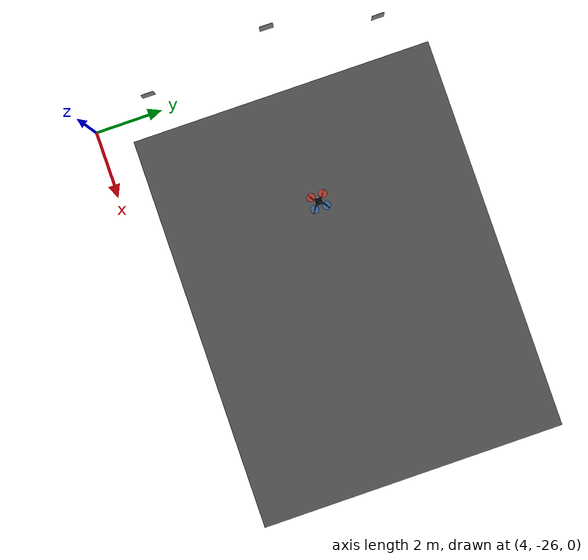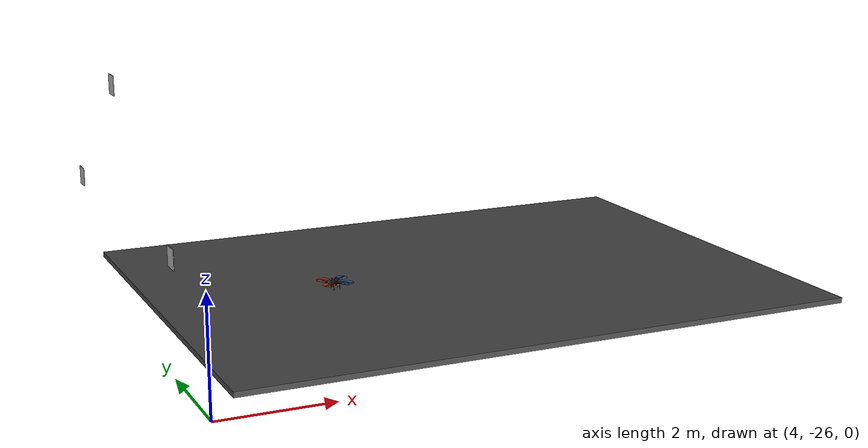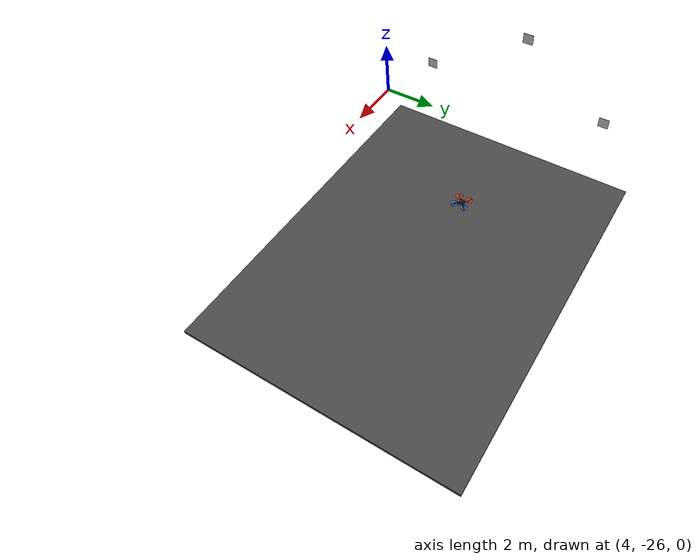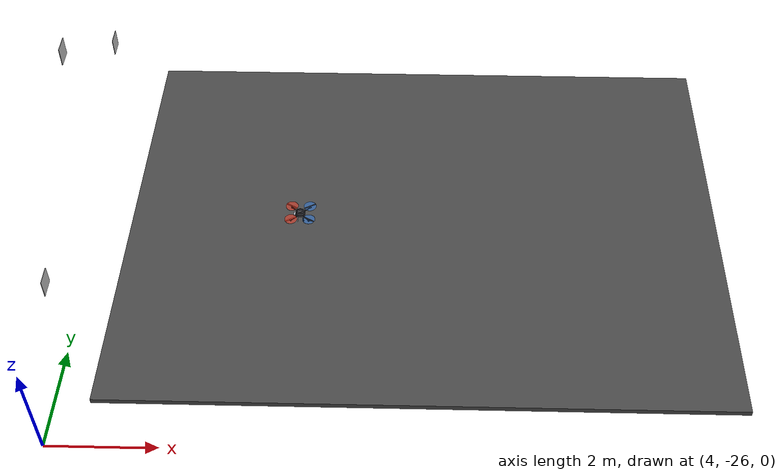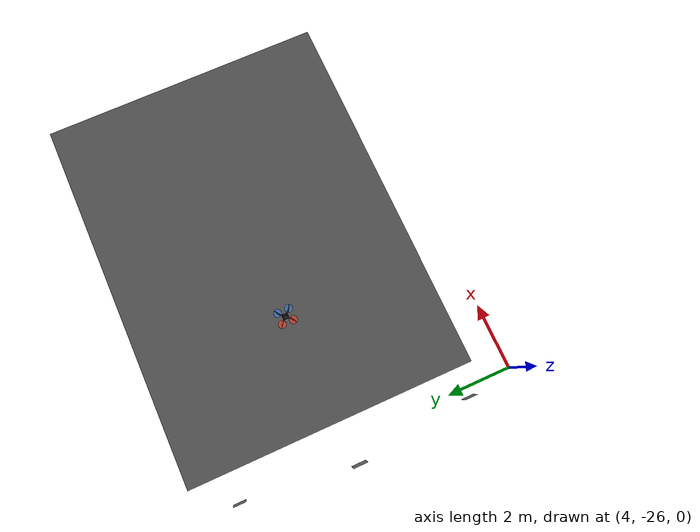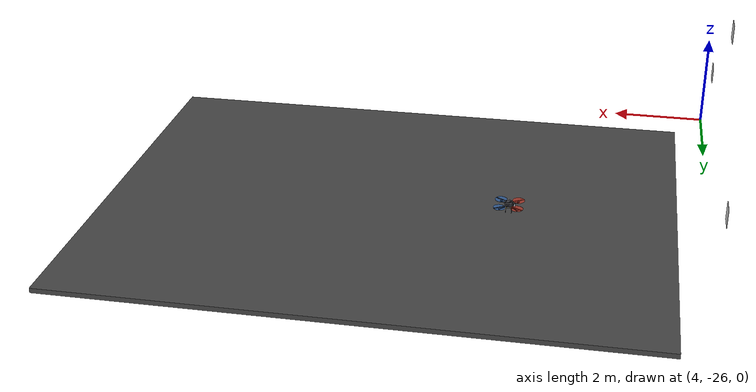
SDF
<sdf version="1.6">
 <world name="default">
  <plugin filename="gz-sim-physics-system" name="gz::sim::systems::Physics"/>
  <plugin filename="gz-sim-sensors-system" name="gz::sim::systems::Sensors">
   <render_engine>ogre2</render_engine>
  </plugin>
  <plugin filename="gz-sim-user-commands-system" name="gz::sim::systems::UserCommands"/>
  <plugin filename="gz-sim-scene-broadcaster-system" name="gz::sim::systems::SceneBroadcaster"/>
  <light type="directional" name="sun_entrance">
   <pose>18.0 -20.57 14.0 0 0.52 3.14159</pose>
   <diffuse>1.0 0.98 0.92 1.0</diffuse>
   <specular>0.4 0.4 0.4 1.0</specular>
   <direction>-0.80 0.0 -0.45</direction>
   <cast_shadows>false</cast_shadows>
  </light>
  <light type="point" name="entrance_light">
   <pose>5.0 -20.57 4.0 0 0 0</pose>
   <diffuse>0.95 0.92 0.85 1</diffuse>
   <specular>0.3 0.3 0.3 1</specular>
   <attenuation>
    <range>35</range>
    <constant>0.20</constant>
    <linear>0.04</linear>
    <quadratic>0.005</quadratic>
   </attenuation>
   <cast_shadows>false</cast_shadows>
  </light>
  <light type="point" name="tunnel_corridor_light">
   <pose>-5.0 -10.0 3.8 0 0 0</pose>
   <diffuse>0.90 0.88 0.82 1</diffuse>
   <specular>0.2 0.2 0.2 1</specular>
   <attenuation>
    <range>35</range>
    <constant>0.20</constant>
    <linear>0.04</linear>
    <quadratic>0.005</quadratic>
   </attenuation>
   <cast_shadows>false</cast_shadows>
  </light>
  <light type="point" name="gallery_junction_light">
   <pose>-17.0 2.0 4.0 0 0 0</pose>
   <diffuse>0.92 0.90 0.85 1</diffuse>
   <specular>0.2 0.2 0.2 1</specular>
   <attenuation>
    <range>45</range>
    <constant>0.20</constant>
    <linear>0.04</linear>
    <quadratic>0.005</quadratic>
   </attenuation>
   <cast_shadows>false</cast_shadows>
  </light>
  <light type="point" name="cavern_center_light">
   <pose>-44.5 35.7 12.0 0 0 0</pose>
   <diffuse>0.95 0.92 0.85 1</diffuse>
   <specular>0.2 0.2 0.2 1</specular>
   <attenuation>
    <range>60</range>
    <constant>0.15</constant>
    <linear>0.03</linear>
    <quadratic>0.003</quadratic>
   </attenuation>
   <cast_shadows>false</cast_shadows>
  </light>
  <light type="point" name="deep_cavern_light">
   <pose>-50.0 -20.0 5.0 0 0 0</pose>
   <diffuse>0.88 0.90 0.95 1</diffuse>
   <specular>0.2 0.2 0.2 1</specular>
   <attenuation>
    <range>45</range>
    <constant>0.20</constant>
    <linear>0.04</linear>
    <quadratic>0.005</quadratic>
   </attenuation>
   <cast_shadows>false</cast_shadows>
  </light>
  <gravity>0 0 -9.8</gravity>
  <magnetic_field>6e-06 2.3e-05 -4.2e-05</magnetic_field>
  <atmosphere type="adiabatic"/>
  <physics name="default_physics" default="0" type="ode">
   <max_step_size>0.004</max_step_size>
   <real_time_factor>1.0</real_time_factor>
   <real_time_update_rate>250</real_time_update_rate>
  </physics>
  <scene>
   <ambient>0.52 0.52 0.55 1.0</ambient>
   <background>0.15 0.18 0.22 1.0</background>
   <shadows>0</shadows>
  </scene>
  <audio><device>default</device></audio>
  <spherical_coordinates>
   <surface_model>EARTH_WGS84</surface_model>
   <latitude_deg>0</latitude_deg>
   <longitude_deg>0</longitude_deg>
   <elevation>0</elevation>
   <heading_deg>0</heading_deg>
  </spherical_coordinates>
  <model name="Apriltag36_11_00014">
   <link name="main">
    <visual name="main_Visual">
     <geometry><box><size>0.348 0.348 0.01</size></box></geometry>
     <material>
      <script>
       <uri>model://Apriltag36_11_00014/materials/scripts</uri>
       <uri>model://Apriltag36_11_00014/materials/textures</uri>
       <name>Apriltag36_11_00014</name>
      </script>
     </material>
    </visual>
   </link>
   <static>1</static>
   <pose>4.01 -24 1.99921 0 1.57 0</pose>
  </model>
  <model name="Apriltag36_11_00015">
   <link name="main">
    <visual name="main_Visual">
     <geometry><box><size>0.348 0.348 0.01</size></box></geometry>
     <material>
      <script>
       <uri>model://Apriltag36_11_00015/materials/scripts</uri>
       <uri>model://Apriltag36_11_00015/materials/textures</uri>
       <name>Apriltag36_11_00015</name>
      </script>
     </material>
    </visual>
   </link>
   <static>1</static>
   <pose>4.01 -17.5 2 0 1.57 0</pose>
  </model>
  <model name="Apriltag36_11_00016">
   <link name="main">
    <visual name="main_Visual">
     <geometry><box><size>0.348 0.348 0.01</size></box></geometry>
     <material>
      <script>
       <uri>model://Apriltag36_11_00016/materials/scripts</uri>
       <uri>model://Apriltag36_11_00016/materials/textures</uri>
       <name>Apriltag36_11_00016</name>
      </script>
     </material>
    </visual>
   </link>
   <static>1</static>
   <pose>4.01 -20.5 4.20131 0 1.57 0</pose>
  </model>
  <model name="asphalt_plane">
   <static>1</static>
   <link name="link">
    <collision name="collision"><geometry><box><size>9 11.6978 0.1</size></box></geometry></collision>
    <visual name="visual">
     <cast_shadows>0</cast_shadows>
     <geometry><box><size>9 11.6978 0.1</size></box></geometry>
     <material>
      <script>
       <uri>model://asphalt_plane/materials/scripts</uri>
       <uri>model://asphalt_plane/materials/textures</uri>
       <name>vrc/asphalt</name>
      </script>
     </material>
    </visual>
   </link>
   <pose>10.469 -20.5581 0 0 0 -1.5708</pose>
  </model>
  <model name="cave_drone">
   <pose>8.0 -20.57 0.17 0 0 3.14159</pose>
   <static>false</static>
   <link name="base_link">
    <gravity>false</gravity>
    <inertial><mass>1.8</mass><inertia><ixx>0.045</ixx><iyy>0.045</iyy><izz>0.075</izz></inertia></inertial>
    <visual name="chassis_bottom">
     <geometry><box><size>0.18 0.18 0.003</size></box></geometry>
     <material>
      <ambient>0.08 0.08 0.09 1</ambient>
      <diffuse>0.12 0.12 0.14 1</diffuse>
      <specular>0.6 0.6 0.6 1</specular>
     </material>
    </visual>
    <visual name="chassis_mid">
     <geometry><box><size>0.16 0.16 0.003</size></box></geometry>
     <pose>0 0 0.04 0 0 0</pose>
     <material>
      <ambient>0.08 0.08 0.09 1</ambient>
      <diffuse>0.12 0.12 0.14 1</diffuse>
      <specular>0.6 0.6 0.6 1</specular>
     </material>
    </visual>
    <visual name="chassis_top">
     <geometry><box><size>0.13 0.13 0.003</size></box></geometry>
     <pose>0 0 0.08 0 0 0</pose>
     <material>
      <ambient>0.08 0.08 0.09 1</ambient>
      <diffuse>0.12 0.12 0.14 1</diffuse>
      <specular>0.6 0.6 0.6 1</specular>
     </material>
    </visual>
    <visual name="standoff_fl">
     <geometry><cylinder><radius>0.003</radius><length>0.08</length></cylinder></geometry>
     <pose>0.06 0.06 0.04 0 0 0</pose>
     <material><ambient>0.7 0.7 0.75 1</ambient><diffuse>0.85 0.85 0.9 1</diffuse></material>
    </visual>
    <visual name="standoff_fr">
     <geometry><cylinder><radius>0.003</radius><length>0.08</length></cylinder></geometry>
     <pose>0.06 -0.06 0.04 0 0 0</pose>
     <material><ambient>0.7 0.7 0.75 1</ambient><diffuse>0.85 0.85 0.9 1</diffuse></material>
    </visual>
    <visual name="standoff_rl">
     <geometry><cylinder><radius>0.003</radius><length>0.08</length></cylinder></geometry>
     <pose>-0.06 0.06 0.04 0 0 0</pose>
     <material><ambient>0.7 0.7 0.75 1</ambient><diffuse>0.85 0.85 0.9 1</diffuse></material>
    </visual>
    <visual name="standoff_rr">
     <geometry><cylinder><radius>0.003</radius><length>0.08</length></cylinder></geometry>
     <pose>-0.06 -0.06 0.04 0 0 0</pose>
     <material><ambient>0.7 0.7 0.75 1</ambient><diffuse>0.85 0.85 0.9 1</diffuse></material>
    </visual>
    <visual name="pixhawk_body">
     <geometry><box><size>0.082 0.046 0.020</size></box></geometry>
     <pose>0 0 0.052 0 0 0</pose>
     <material>
      <ambient>0.05 0.05 0.06 1</ambient>
      <diffuse>0.10 0.10 0.12 1</diffuse>
      <specular>0.9 0.9 0.95 1</specular>
     </material>
    </visual>
    <visual name="pixhawk_logo">
     <geometry><box><size>0.035 0.016 0.002</size></box></geometry>
     <pose>0.015 0 0.063 0 0 0</pose>
     <material><ambient>0.9 0.9 0.9 1</ambient><diffuse>1 1 1 1</diffuse></material>
    </visual>
    <visual name="pixhawk_led">
     <geometry><box><size>0.008 0.008 0.002</size></box></geometry>
     <pose>-0.025 0 0.063 0 0 0</pose>
     <material><ambient>0 1 0.8 1</ambient><diffuse>0 1 0.8 1</diffuse><emissive>0 1 0.8 1</emissive></material>
    </visual>
    <visual name="realsense_body">
     <geometry><box><size>0.025 0.090 0.025</size></box></geometry>
     <pose>0.115 0 0.008 0 0.15 0</pose>
     <material>
      <ambient>0.75 0.75 0.80 1</ambient>
      <diffuse>0.85 0.85 0.90 1</diffuse>
      <specular>1 1 1 1</specular>
     </material>
    </visual>
    <visual name="realsense_glass">
     <geometry><box><size>0.003 0.086 0.020</size></box></geometry>
     <pose>0.128 0 0.006 0 0.15 0</pose>
     <material>
      <ambient>0.02 0.05 0.15 1</ambient>
      <diffuse>0.05 0.10 0.25 1</diffuse>
      <specular>1 1 1 1</specular>
     </material>
    </visual>
    <visual name="realsense_ir1">
     <geometry><cylinder><radius>0.004</radius><length>0.005</length></cylinder></geometry>
     <pose>0.129 0.032 0.006 0 1.72 0</pose>
     <material><ambient>0.1 0.3 0.7 1</ambient><diffuse>0.2 0.5 1 1</diffuse></material>
    </visual>
    <visual name="realsense_rgb">
     <geometry><cylinder><radius>0.004</radius><length>0.005</length></cylinder></geometry>
     <pose>0.129 0.000 0.006 0 1.72 0</pose>
     <material><ambient>0.1 0.6 0.2 1</ambient><diffuse>0.2 0.9 0.3 1</diffuse></material>
    </visual>
    <visual name="realsense_ir2">
     <geometry><cylinder><radius>0.004</radius><length>0.005</length></cylinder></geometry>
     <pose>0.129 -0.032 0.006 0 1.72 0</pose>
     <material><ambient>0.1 0.3 0.7 1</ambient><diffuse>0.2 0.5 1 1</diffuse></material>
    </visual>
    <visual name="rplidar_base">
     <geometry><cylinder><radius>0.038</radius><length>0.024</length></cylinder></geometry>
     <pose>0 0 0.095 0 0 0</pose>
     <material><ambient>0.06 0.06 0.07 1</ambient><diffuse>0.12 0.12 0.14 1</diffuse></material>
    </visual>
    <visual name="rplidar_puck">
     <geometry><cylinder><radius>0.034</radius><length>0.020</length></cylinder></geometry>
     <pose>0 0 0.116 0 0 0</pose>
     <material>
      <ambient>0.04 0.04 0.05 1</ambient>
      <diffuse>0.08 0.08 0.10 1</diffuse>
      <specular>0.8 0.8 0.8 1</specular>
     </material>
    </visual>
    <visual name="rplidar_slit">
     <geometry><box><size>0.008 0.066 0.004</size></box></geometry>
     <pose>0 0 0.116 0 0 0</pose>
     <material><ambient>1 0 0 1</ambient><diffuse>1 0.1 0.1 1</diffuse><emissive>0.8 0 0 1</emissive></material>
    </visual>
    <visual name="lipo_battery">
     <geometry><box><size>0.138 0.050 0.038</size></box></geometry>
     <pose>-0.01 0 -0.025 0 0 0</pose>
     <material><ambient>0.06 0.06 0.07 1</ambient><diffuse>0.12 0.12 0.15 1</diffuse></material>
    </visual>
    <visual name="lipo_strap_1">
     <geometry><box><size>0.024 0.054 0.042</size></box></geometry>
     <pose>0.028 0 -0.025 0 0 0</pose>
     <material><ambient>0.95 0.80 0.05 1</ambient><diffuse>1.0 0.85 0.1 1</diffuse></material>
    </visual>
    <visual name="lipo_strap_2">
     <geometry><box><size>0.024 0.054 0.042</size></box></geometry>
     <pose>-0.048 0 -0.025 0 0 0</pose>
     <material><ambient>0.95 0.80 0.05 1</ambient><diffuse>1.0 0.85 0.1 1</diffuse></material>
    </visual>
    <visual name="arm_fl">
     <geometry><cylinder><radius>0.008</radius><length>0.24</length></cylinder></geometry>
     <pose>0.09 0.09 0.0 0 1.5708 0.785</pose>
     <material><ambient>0.07 0.07 0.08 1</ambient><diffuse>0.12 0.12 0.14 1</diffuse></material>
    </visual>
    <visual name="arm_fr">
     <geometry><cylinder><radius>0.008</radius><length>0.24</length></cylinder></geometry>
     <pose>0.09 -0.09 0.0 0 1.5708 -0.785</pose>
     <material><ambient>0.07 0.07 0.08 1</ambient><diffuse>0.12 0.12 0.14 1</diffuse></material>
    </visual>
    <visual name="arm_rl">
     <geometry><cylinder><radius>0.008</radius><length>0.24</length></cylinder></geometry>
     <pose>-0.09 0.09 0.0 0 1.5708 -0.785</pose>
     <material><ambient>0.07 0.07 0.08 1</ambient><diffuse>0.12 0.12 0.14 1</diffuse></material>
    </visual>
    <visual name="arm_rr">
     <geometry><cylinder><radius>0.008</radius><length>0.24</length></cylinder></geometry>
     <pose>-0.09 -0.09 0.0 0 1.5708 0.785</pose>
     <material><ambient>0.07 0.07 0.08 1</ambient><diffuse>0.12 0.12 0.14 1</diffuse></material>
    </visual>
    <visual name="mount_fl">
     <geometry><box><size>0.036 0.034 0.016</size></box></geometry>
     <pose>0.18 0.18 0.004 0 0 0.785</pose>
     <material><ambient>0.1 0.1 0.1 1</ambient></material>
    </visual>
    <visual name="mount_fr">
     <geometry><box><size>0.036 0.034 0.016</size></box></geometry>
     <pose>0.18 -0.18 0.004 0 0 -0.785</pose>
     <material><ambient>0.1 0.1 0.1 1</ambient></material>
    </visual>
    <visual name="mount_rl">
     <geometry><box><size>0.036 0.034 0.016</size></box></geometry>
     <pose>-0.18 0.18 0.004 0 0 -0.785</pose>
     <material><ambient>0.1 0.1 0.1 1</ambient></material>
    </visual>
    <visual name="mount_rr">
     <geometry><box><size>0.036 0.034 0.016</size></box></geometry>
     <pose>-0.18 -0.18 0.004 0 0 0.785</pose>
     <material><ambient>0.1 0.1 0.1 1</ambient></material>
    </visual>
    <visual name="motor_fl">
     <geometry><cylinder><radius>0.015</radius><length>0.026</length></cylinder></geometry>
     <pose>0.18 0.18 0.022 0 0 0</pose>
     <material>
      <ambient>0.3 0.3 0.35 1</ambient>
      <diffuse>0.5 0.5 0.55 1</diffuse>
      <specular>1 1 1 1</specular>
     </material>
    </visual>
    <visual name="motor_fr">
     <geometry><cylinder><radius>0.015</radius><length>0.026</length></cylinder></geometry>
     <pose>0.18 -0.18 0.022 0 0 0</pose>
     <material>
      <ambient>0.3 0.3 0.35 1</ambient>
      <diffuse>0.5 0.5 0.55 1</diffuse>
      <specular>1 1 1 1</specular>
     </material>
    </visual>
    <visual name="motor_rl">
     <geometry><cylinder><radius>0.015</radius><length>0.026</length></cylinder></geometry>
     <pose>-0.18 0.18 0.022 0 0 0</pose>
     <material>
      <ambient>0.3 0.3 0.35 1</ambient>
      <diffuse>0.5 0.5 0.55 1</diffuse>
      <specular>1 1 1 1</specular>
     </material>
    </visual>
    <visual name="motor_rr">
     <geometry><cylinder><radius>0.015</radius><length>0.026</length></cylinder></geometry>
     <pose>-0.18 -0.18 0.022 0 0 0</pose>
     <material>
      <ambient>0.3 0.3 0.35 1</ambient>
      <diffuse>0.5 0.5 0.55 1</diffuse>
      <specular>1 1 1 1</specular>
     </material>
    </visual>
    <visual name="prop_disc_fl">
     <geometry><cylinder><radius>0.125</radius><length>0.003</length></cylinder></geometry>
     <pose>0.18 0.18 0.038 0 0 0</pose>
     <material>
      <ambient>0.8 0.2 0.1 0.45</ambient>
      <diffuse>1.0 0.25 0.15 0.55</diffuse>
      <specular>0.6 0.6 0.6 0.8</specular>
     </material>
    </visual>
    <visual name="prop_blade_fl">
     <geometry><box><size>0.24 0.022 0.004</size></box></geometry>
     <pose>0.18 0.18 0.039 0 0 0.52</pose>
     <material><ambient>0.9 0.2 0.1 0.9</ambient><diffuse>1.0 0.25 0.15 0.95</diffuse></material>
    </visual>
    <visual name="prop_disc_fr">
     <geometry><cylinder><radius>0.125</radius><length>0.003</length></cylinder></geometry>
     <pose>0.18 -0.18 0.038 0 0 0</pose>
     <material>
      <ambient>0.8 0.2 0.1 0.45</ambient>
      <diffuse>1.0 0.25 0.15 0.55</diffuse>
      <specular>0.6 0.6 0.6 0.8</specular>
     </material>
    </visual>
    <visual name="prop_blade_fr">
     <geometry><box><size>0.24 0.022 0.004</size></box></geometry>
     <pose>0.18 -0.18 0.039 0 0 -0.52</pose>
     <material><ambient>0.9 0.2 0.1 0.9</ambient><diffuse>1.0 0.25 0.15 0.95</diffuse></material>
    </visual>
    <visual name="prop_disc_rl">
     <geometry><cylinder><radius>0.125</radius><length>0.003</length></cylinder></geometry>
     <pose>-0.18 0.18 0.038 0 0 0</pose>
     <material>
      <ambient>0.15 0.35 0.7 0.45</ambient>
      <diffuse>0.2 0.5 0.9 0.55</diffuse>
      <specular>0.6 0.6 0.6 0.8</specular>
     </material>
    </visual>
    <visual name="prop_blade_rl">
     <geometry><box><size>0.24 0.022 0.004</size></box></geometry>
     <pose>-0.18 0.18 0.039 0 0 -0.52</pose>
     <material><ambient>0.1 0.1 0.12 0.9</ambient><diffuse>0.18 0.18 0.2 0.95</diffuse></material>
    </visual>
    <visual name="prop_disc_rr">
     <geometry><cylinder><radius>0.125</radius><length>0.003</length></cylinder></geometry>
     <pose>-0.18 -0.18 0.038 0 0 0</pose>
     <material>
      <ambient>0.15 0.35 0.7 0.45</ambient>
      <diffuse>0.2 0.5 0.9 0.55</diffuse>
      <specular>0.6 0.6 0.6 0.8</specular>
     </material>
    </visual>
    <visual name="prop_blade_rr">
     <geometry><box><size>0.24 0.022 0.004</size></box></geometry>
     <pose>-0.18 -0.18 0.039 0 0 0.52</pose>
     <material><ambient>0.1 0.1 0.12 0.9</ambient><diffuse>0.18 0.18 0.2 0.95</diffuse></material>
    </visual>
    <visual name="leg_fl">
     <geometry><cylinder><radius>0.006</radius><length>0.18</length></cylinder></geometry>
     <pose>0.06 0.08 -0.08 0.22 0 0</pose>
     <material><ambient>0.06 0.06 0.07 1</ambient><diffuse>0.1 0.1 0.12 1</diffuse></material>
    </visual>
    <visual name="leg_rl">
     <geometry><cylinder><radius>0.006</radius><length>0.18</length></cylinder></geometry>
     <pose>-0.06 0.08 -0.08 0.22 0 0</pose>
     <material><ambient>0.06 0.06 0.07 1</ambient><diffuse>0.1 0.1 0.12 1</diffuse></material>
    </visual>
    <visual name="leg_fr">
     <geometry><cylinder><radius>0.006</radius><length>0.18</length></cylinder></geometry>
     <pose>0.06 -0.08 -0.08 -0.22 0 0</pose>
     <material><ambient>0.06 0.06 0.07 1</ambient><diffuse>0.1 0.1 0.12 1</diffuse></material>
    </visual>
    <visual name="leg_rr">
     <geometry><cylinder><radius>0.006</radius><length>0.18</length></cylinder></geometry>
     <pose>-0.06 -0.08 -0.08 -0.22 0 0</pose>
     <material><ambient>0.06 0.06 0.07 1</ambient><diffuse>0.1 0.1 0.12 1</diffuse></material>
    </visual>
    <visual name="skid_l">
     <geometry><cylinder><radius>0.006</radius><length>0.28</length></cylinder></geometry>
     <pose>0 0.105 -0.165 1.5708 0 0</pose>
     <material><ambient>0.08 0.08 0.09 1</ambient><diffuse>0.14 0.14 0.16 1</diffuse></material>
    </visual>
    <visual name="skid_r">
     <geometry><cylinder><radius>0.006</radius><length>0.28</length></cylinder></geometry>
     <pose>0 -0.105 -0.165 1.5708 0 0</pose>
     <material><ambient>0.08 0.08 0.09 1</ambient><diffuse>0.14 0.14 0.16 1</diffuse></material>
    </visual>
    <visual name="skid_cap_fl">
     <geometry><cylinder><radius>0.009</radius><length>0.02</length></cylinder></geometry>
     <pose>0.14 0.105 -0.165 1.5708 0 0</pose>
     <material><ambient>0.02 0.02 0.02 1</ambient></material>
    </visual>
    <visual name="skid_cap_rl">
     <geometry><cylinder><radius>0.009</radius><length>0.02</length></cylinder></geometry>
     <pose>-0.14 0.105 -0.165 1.5708 0 0</pose>
     <material><ambient>0.02 0.02 0.02 1</ambient></material>
    </visual>
    <visual name="skid_cap_fr">
     <geometry><cylinder><radius>0.009</radius><length>0.02</length></cylinder></geometry>
     <pose>0.14 -0.105 -0.165 1.5708 0 0</pose>
     <material><ambient>0.02 0.02 0.02 1</ambient></material>
    </visual>
    <visual name="skid_cap_rr">
     <geometry><cylinder><radius>0.009</radius><length>0.02</length></cylinder></geometry>
     <pose>-0.14 -0.105 -0.165 1.5708 0 0</pose>
     <material><ambient>0.02 0.02 0.02 1</ambient></material>
    </visual>
    <collision name="col">
     <geometry><box><size>0.48 0.48 0.32</size></box></geometry>
     <pose>0 0 -0.02 0 0 0</pose>
    </collision>
    <light type="spot" name="drone_headlight">
     <pose>0.14 0 0.01 0 0 0</pose>
     <diffuse>0.90 0.90 0.92 1</diffuse>
     <specular>0.2 0.2 0.2 1</specular>
     <attenuation>
      <range>45</range>
      <constant>0.50</constant>
      <linear>0.02</linear>
      <quadratic>0.002</quadratic>
     </attenuation>
     <spot><inner_angle>1.10</inner_angle><outer_angle>1.65</outer_angle><falloff>0.45</falloff></spot>
     <direction>1 0 0</direction>
     <cast_shadows>false</cast_shadows>
    </light>
    <sensor name="camera" type="camera">
     <pose>-1.35 0 0.45 0 0.16 0</pose>
     <camera>
      <horizontal_fov>1.42</horizontal_fov>
      <image><width>640</width><height>480</height><format>R8G8B8</format></image>
      <clip><near>0.05</near><far>150.0</far></clip>
     </camera>
     <always_on>1</always_on>
     <update_rate>30</update_rate>
     <visualize>true</visualize>
     <topic>camera</topic>
    </sensor>
    <sensor name="gpu_lidar" type="gpu_lidar">
     <pose>0.0 0 0.116 0 0 0</pose>
     <topic>lidar</topic>
     <update_rate>10</update_rate>
     <ray>
      <scan>
       <horizontal>
        <samples>72</samples>
        <resolution>1</resolution>
        <min_angle>-3.14159265</min_angle>
        <max_angle>3.14159265</max_angle>
       </horizontal>
      </scan>
      <range><min>0.12</min><max>20.0</max><resolution>0.01</resolution></range>
     </ray>
     <always_on>1</always_on>
     <visualize>false</visualize>
    </sensor>
   </link>
   <plugin filename="gz-sim-velocity-control-system" name="gz::sim::systems::VelocityControl">
    <initial_linear>0 0 0</initial_linear>
    <initial_angular>0 0 0</initial_angular>
    <topic>/cmd_vel</topic>
   </plugin>
   <plugin filename="gz-sim-odometry-publisher-system" name="gz::sim::systems::OdometryPublisher">
    <odom_topic>/model/cave_drone/odometry</odom_topic>
    <dimensions>3</dimensions>
   </plugin>
  </model>
 </world>
</sdf>
